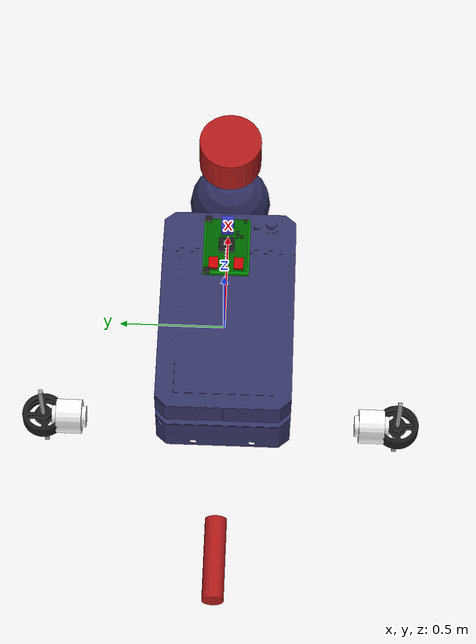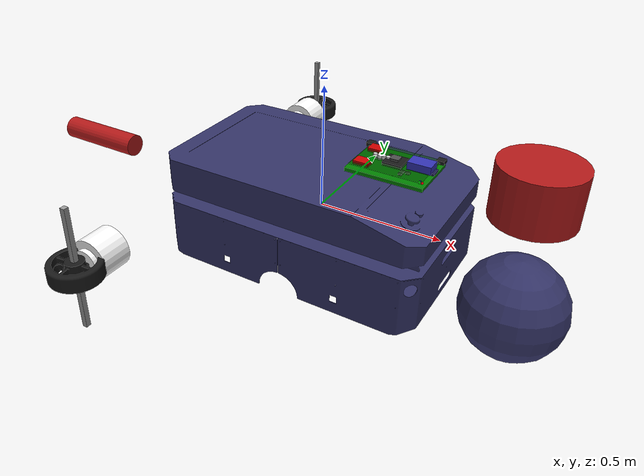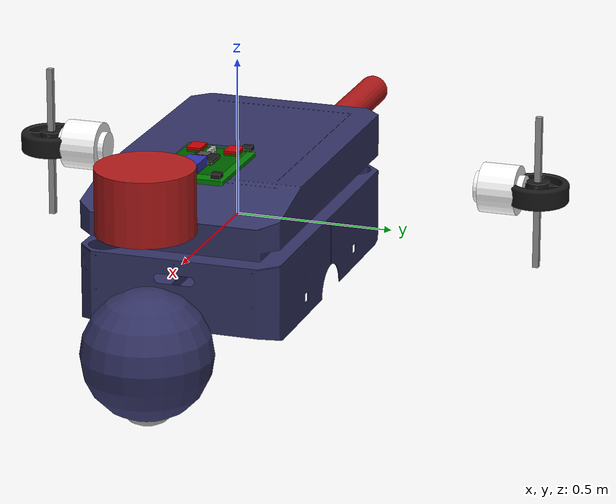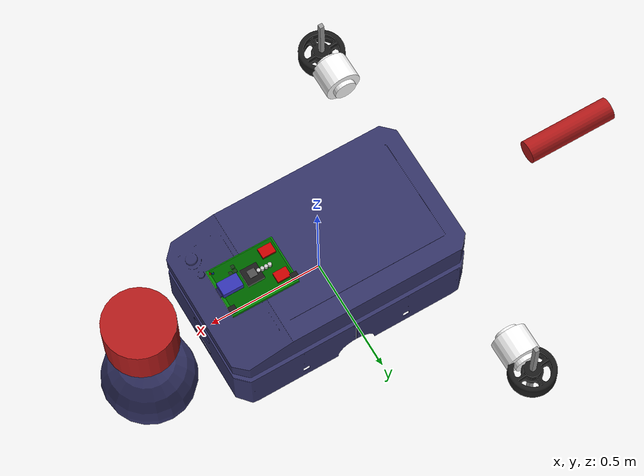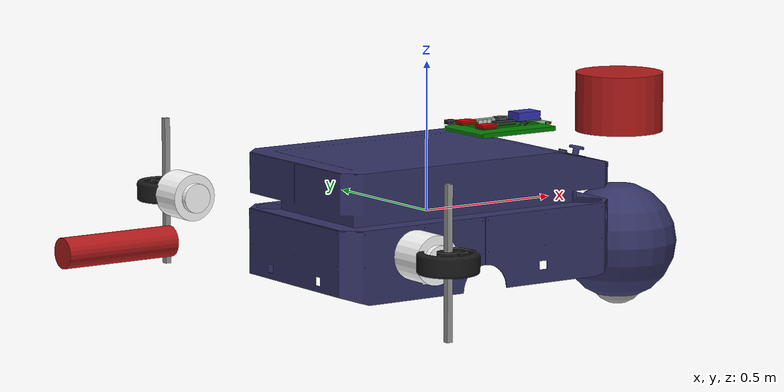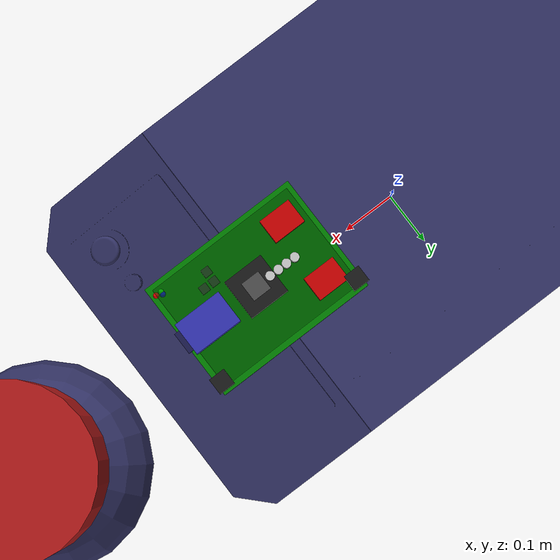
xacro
<?xml version="1.0" ?>

<robot name="robot" xmlns:xacro="http://www.ros.org/wiki/xacro">

    <xacro:include filename="$(find robot_description)/urdf/robot.gazebo" />

    <!-- Parameters -->
    <xacro:property name="chassis_mass" value="10" />
    <xacro:property name="pi" value="3.1415926535897931"/>

    <!-- Link - chassis -->
    <link name="link_chassis">
        <inertial>
            <mass value="${chassis_mass}" />
            <origin xyz="0 0 0.3" rpy="0 0 0" />
            <inertia ixx="1.5417" ixy="0" ixz="0" iyy="3.467" iyz="0" izz="4.742" />
        </inertial>

        <collision>
            <geometry>
                <mesh filename="package://robot_description/meshes/chassis.stl" />
            </geometry>
        </collision>

        <visual>
            <geometry>
                <mesh filename="package://robot_description/meshes/chassis.stl" />
            </geometry>
            <material name="DarkBlue">
                <color rgba="0.2 0.2 0.4 1" />
            </material>
        </visual>
    </link>

    <!-- Joint - caster wheel -->
    <joint name="joint_chassis_caster_wheel" type="fixed">
        <origin rpy="0 0 0" xyz="0.8 0 -0.15" />
        <child link="link_caster_wheel" />
        <parent link="link_chassis" />
        <joint_properties damping="1.0" friction="1.0" />
    </joint>
    <!-- Link - caster wheel -->
    <link name="link_caster_wheel">
        <inertial>
            <mass value="1" />
            <origin xyz="0 0 0" rpy="0 0 0" />
            <inertia ixx="0.002526666666667" ixy="0" ixz="0" iyy="0.002526666666667" iyz="0" izz="0.005"/>
        </inertial>

        <!-- Caster wheel support -->
        <collision>
            <origin rpy="0 0 0" xyz="0 0 -0.03" />
            <geometry>
                <sphere radius="0.2" />
            </geometry>
        </collision>
        <visual>
            <origin rpy="0 0 0" xyz="0 0 -0.03" />
            <geometry>
                <sphere radius="0.2" />
            </geometry>
            <material name="DarkBlue">
                <color rgba="0.2 0.2 0.4 1" />
            </material>
        </visual>

        <!-- Caster wheel -->
        <collision>
            <origin rpy="0 0 0" xyz="0 0 -0.15" />
            <geometry>
                <sphere radius="0.10" />
            </geometry>
        </collision>
        <visual>
            <origin rpy="0 0 0" xyz="0 0 -0.15" />
            <geometry>
                <sphere radius="0.10" />
            </geometry>
            <material name="Grey">
                <color rgba="0.6 0.6 0.6 1" />
            </material>
        </visual>
    </link>

    <!-- Joint - chassis / left wheel -->
    <joint name="joint_chassis_left_wheel" type="continuous">
        <origin rpy="0 0 0" xyz="-0.5 0.65 0" />
        <child link="link_left_wheel" />
        <parent link="link_chassis" />
        <axis rpy="0 0 0" xyz="0 1 0" />
        <limit effort="10000" velocity="1000" />
        <joint_properties damping="1.0" friction="1.0" />
    </joint>
    <!-- Link - left wheel -->
    <link name="link_left_wheel">
        <inertial>
            <mass value="1" />
            <origin xyz="0 0 0" rpy="0 0 0" />
            <inertia ixx="0.002526666666667" ixy="0" ixz="0" iyy="0.002526666666667" iyz="0" izz="0.005"/>
        </inertial>

        <!-- Tires -->
        <collision>
            <origin rpy="${pi/2} 0 0" xyz="0 0.18 0" />
            <geometry>
                <cylinder length="0.12" radius="0.4"/>
            </geometry>
        </collision>
        <visual>
            <origin rpy="${pi/2} 0 0" xyz="0 0.18 0" />
            <geometry>
                <mesh filename="package://robot_description/meshes/wheel.stl" />
            </geometry>
            <material name="Black">
                <color rgba="0.1 0.1 0.1 1" />
            </material>
        </visual>

        <!-- Primary Axle - Changed to White -->
        <collision>
            <origin rpy="${pi/2} 0 0" xyz="0 0.06 0" />
            <geometry>
                <cylinder length="0.12" radius="0.08"/>
            </geometry>
        </collision>
        <visual>
            <origin rpy="${pi/2} 0 0" xyz="0 0.06 0" />
            <geometry>
                <cylinder length="0.12" radius="0.08"/>
            </geometry>
            <material name="White">
                <color rgba="1.0 1.0 1.0 1" />
            </material>
        </visual>

        <!-- Added Secondary Axle to form X-shape -->
        <visual>
            <origin rpy="${pi/2} ${pi/2} 0" xyz="0 0.06 0" />
            <geometry>
                <cylinder length="0.16" radius="0.05"/>
            </geometry>
            <material name="White">
                <color rgba="1.0 1.0 1.0 1" />
            </material>
        </visual>

        <!-- Hubcap -->
        <visual>
            <origin rpy="${pi/2} 0 0" xyz="0 0.18 0" />
            <geometry>
                <box size="0.02 0.5 0.02" />
            </geometry>
            <material name="Grey">
                <color rgba="0.6 0.6 0.6 1" />
            </material>
        </visual>
    </link>

    <!-- Joint - chassis / right wheel -->
    <joint name="joint_chassis_right_wheel" type="continuous">
        <origin rpy="0 0 0" xyz="-0.5 -0.65 0" />
        <child link="link_right_wheel" />
        <parent link="link_chassis" />
        <axis rpy="0 0 0" xyz="0 1 0" />
        <limit effort="10000" velocity="1000" />
        <joint_properties damping="1.0" friction="1.0" />
    </joint>
    <!-- Link - right wheel -->
    <link name="link_right_wheel">
        <inertial>
            <mass value="1" />
            <origin xyz="0 0 0" rpy="0 0 0" />
            <inertia ixx="0.002526666666667" ixy="0" ixz="0" iyy="0.002526666666667" iyz="0" izz="0.005"/>
        </inertial>

        <!-- Tires -->
        <collision>
            <origin rpy="${pi/2} 0 0" xyz="0 -0.18 0" />
            <geometry>
                <cylinder length="0.12" radius="0.4"/>
            </geometry>
        </collision>
        <visual>
            <origin rpy="${pi/2} 0 0" xyz="0 -0.18 0" />
            <geometry>
                <mesh filename="package://robot_description/meshes/wheel.stl" />
            </geometry>
            <material name="Black">
                <color rgba="0.1 0.1 0.1 1" />
            </material>
        </visual>

        <!-- Primary Axle - Changed to White -->
        <collision>
            <origin rpy="${pi/2} 0 0" xyz="0 -0.06 0" />
            <geometry>
                <cylinder length="0.12" radius="0.08"/>
            </geometry>
        </collision>
        <visual>
            <origin rpy="${pi/2} 0 0" xyz="0 -0.06 0" />
            <geometry>
                <cylinder length="0.12" radius="0.08"/>
            </geometry>
            <material name="White">
                <color rgba="1.0 1.0 1.0 1" />
            </material>
        </visual>

        <!-- Added Secondary Axle to form X-shape -->
        <visual>
            <origin rpy="${pi/2} ${pi/2} 0" xyz="0 -0.06 0" />
            <geometry>
                <cylinder length="0.16" radius="0.05"/>
            </geometry>
            <material name="White">
                <color rgba="1.0 1.0 1.0 1" />
            </material>
        </visual>

        <!-- Hubcap -->
        <visual>
            <origin rpy="${pi/2} 0 0" xyz="0 -0.18 0" />
            <geometry>
                <box size="0.02 0.5 0.02" />
            </geometry>
            <material name="Grey">
                <color rgba="0.6 0.6 0.6 1" />
            </material>
        </visual>
    </link>

    <!-- Laser scan -->
    <joint name="joint_laser_scan_chassis" type="fixed">
        <origin rpy="0 0 0" xyz="0.8 0 0.3" />
        <child link="link_laser_scan" />
        <parent link="link_chassis" />
        <joint_properties damping="1.0" friction="1.0" />
    </joint>
    <link name="link_laser_scan">
        <inertial>
            <origin xyz="0 0 0" rpy="0 0 0" />
            <mass value="0.5" />
            <inertia ixx="0.000252666666667" ixy="0" ixz="0" iyy="0.000252666666667" iyz="0" izz="0.0005"/>
        </inertial>
        <visual>
            <origin xyz="0 0 0" rpy="0 0 0" />
            <geometry>
                <cylinder radius="0.15" length="0.20"/>
            </geometry>
            <material name="Red">
                <color rgba="0.7 0.1 0.1 1" />
            </material>
        </visual>
        <collision>
            <origin xyz="0 0 0" rpy="0 0 0"/>
            <geometry>
                <cylinder radius="0.15" length="0.20"/>
            </geometry>
        </collision>
    </link>

    <!-- Larger Realistic Electric Board with Components -->
    <joint name="joint_chassis_electric_board" type="fixed">
        <origin rpy="0 0 0" xyz="0.3 0 0.25" />
        <child link="link_electric_board" />
        <parent link="link_chassis" />
        <joint_properties damping="1.0" friction="1.0" />
    </joint>

    <!-- Main PCB Board - 50% larger -->
    <link name="link_electric_board">
        <inertial>
            <origin xyz="0 0 0" rpy="0 0 0" />
            <mass value="0.8" />
            <inertia ixx="0.0012" ixy="0" ixz="0" iyy="0.0012" iyz="0" izz="0.0023"/>
        </inertial>
        <visual>
            <origin xyz="0 0 0" rpy="0 0 0" />
            <geometry>
                <box size="0.3 0.22 0.015"/>
            </geometry>
            <material name="PCBGreen">
                <color rgba="0.0 0.5 0.0 1" />
            </material>
        </visual>
        <collision>
            <origin xyz="0 0 0" rpy="0 0 0"/>
            <geometry>
                <box size="0.3 0.22 0.015"/>
            </geometry>
        </collision>
    </link>

    <!-- Microcontroller - larger -->
    <joint name="joint_board_microcontroller" type="fixed">
        <origin rpy="0 0 0" xyz="0 0 0.015" />
        <child link="link_microcontroller" />
        <parent link="link_electric_board" />
    </joint>
    <link name="link_microcontroller">
        <inertial>
            <origin xyz="0 0 0" rpy="0 0 0" />
            <mass value="0.1" />
            <inertia ixx="0.00004" ixy="0" ixz="0" iyy="0.00004" iyz="0" izz="0.00004"/>
        </inertial>
        <visual>
            <origin xyz="0 0 0.007" rpy="0 0 0" />
            <geometry>
                <box size="0.075 0.075 0.014"/>
            </geometry>
            <material name="Black">
                <color rgba="0.1 0.1 0.1 1" />
            </material>
        </visual>
    </link>

    <!-- Battery - larger -->
    <joint name="joint_board_battery" type="fixed">
        <origin rpy="0 0 0" xyz="0.1 0 0.02" />
        <child link="link_battery" />
        <parent link="link_electric_board" />
    </joint>
    <link name="link_battery">
        <inertial>
            <origin xyz="0 0 0" rpy="0 0 0" />
            <mass value="0.3" />
            <inertia ixx="0.0002" ixy="0" ixz="0" iyy="0.0002" iyz="0" izz="0.0002"/>
        </inertial>
        <visual>
            <origin xyz="0 0 0.015" rpy="0 0 0" />
            <geometry>
                <box size="0.09 0.06 0.03"/>
            </geometry>
            <material name="Battery">
                <color rgba="0.2 0.2 0.7 1" />
            </material>
        </visual>
    </link>

    <!-- Motor Driver - larger -->
    <joint name="joint_board_motor_driver" type="fixed">
        <origin rpy="0 0 0" xyz="-0.1 0.06 0.015" />
        <child link="link_motor_driver" />
        <parent link="link_electric_board" />
    </joint>
    <link name="link_motor_driver">
        <inertial>
            <origin xyz="0 0 0" rpy="0 0 0" />
            <mass value="0.08" />
            <inertia ixx="0.00002" ixy="0" ixz="0" iyy="0.00002" iyz="0" izz="0.00002"/>
        </inertial>
        <visual>
            <origin xyz="0 0 0.007" rpy="0 0 0" />
            <geometry>
                <box size="0.06 0.045 0.014"/>
            </geometry>
            <material name="Red">
                <color rgba="0.8 0.0 0.0 1" />
            </material>
        </visual>
    </link>

    <!-- Second Motor Driver -->
    <joint name="joint_board_motor_driver2" type="fixed">
        <origin rpy="0 0 0" xyz="-0.1 -0.06 0.015" />
        <child link="link_motor_driver2" />
        <parent link="link_electric_board" />
    </joint>
    <link name="link_motor_driver2">
        <inertial>
            <origin xyz="0 0 0" rpy="0 0 0" />
            <mass value="0.08" />
            <inertia ixx="0.00002" ixy="0" ixz="0" iyy="0.00002" iyz="0" izz="0.00002"/>
        </inertial>
        <visual>
            <origin xyz="0 0 0.007" rpy="0 0 0" />
            <geometry>
                <box size="0.06 0.045 0.014"/>
            </geometry>
            <material name="Red">
                <color rgba="0.8 0.0 0.0 1" />
            </material>
        </visual>
    </link>

    <!-- Capacitors (4) - larger -->
    <joint name="joint_board_capacitor1" type="fixed">
        <origin rpy="0 0 0" xyz="-0.08 0 0.015" />
        <child link="link_capacitor1" />
        <parent link="link_electric_board" />
    </joint>
    <link name="link_capacitor1">
        <visual>
            <origin xyz="0 0 0.01" rpy="0 0 0" />
            <geometry>
                <cylinder radius="0.008" length="0.02"/>
            </geometry>
            <material name="Silver">
                <color rgba="0.8 0.8 0.8 1" />
            </material>
        </visual>
    </link>

    <joint name="joint_board_capacitor2" type="fixed">
        <origin rpy="0 0 0" xyz="-0.063 0 0.015" />
        <child link="link_capacitor2" />
        <parent link="link_electric_board" />
    </joint>
    <link name="link_capacitor2">
        <visual>
            <origin xyz="0 0 0.01" rpy="0 0 0" />
            <geometry>
                <cylinder radius="0.008" length="0.02"/>
            </geometry>
            <material name="Silver">
                <color rgba="0.8 0.8 0.8 1" />
            </material>
        </visual>
    </link>

    <!-- Added 2 more capacitors for realism -->
    <joint name="joint_board_capacitor3" type="fixed">
        <origin rpy="0 0 0" xyz="-0.046 0 0.015" />
        <child link="link_capacitor3" />
        <parent link="link_electric_board" />
    </joint>
    <link name="link_capacitor3">
        <visual>
            <origin xyz="0 0 0.01" rpy="0 0 0" />
            <geometry>
                <cylinder radius="0.008" length="0.02"/>
            </geometry>
            <material name="Silver">
                <color rgba="0.8 0.8 0.8 1" />
            </material>
        </visual>
    </link>

    <joint name="joint_board_capacitor4" type="fixed">
        <origin rpy="0 0 0" xyz="-0.029 0 0.015" />
        <child link="link_capacitor4" />
        <parent link="link_electric_board" />
    </joint>
    <link name="link_capacitor4">
        <visual>
            <origin xyz="0 0 0.01" rpy="0 0 0" />
            <geometry>
                <cylinder radius="0.008" length="0.02"/>
            </geometry>
            <material name="Silver">
                <color rgba="0.8 0.8 0.8 1" />
            </material>
        </visual>
    </link>

    <!-- LEDs - larger -->
    <joint name="joint_board_led1" type="fixed">
        <origin rpy="0 0 0" xyz="0.13 -0.09 0.015" />
        <child link="link_led1" />
        <parent link="link_electric_board" />
    </joint>
    <link name="link_led1">
        <visual>
            <origin xyz="0 0 0.002" rpy="0 0 0" />
            <geometry>
                <sphere radius="0.005"/>
            </geometry>
            <material name="GreenLED">
                <color rgba="0.0 1.0 0.0 1" />
            </material>
        </visual>
    </link>

    <joint name="joint_board_led2" type="fixed">
        <origin rpy="0 0 0" xyz="0.14 -0.09 0.015" />
        <child link="link_led2" />
        <parent link="link_electric_board" />
    </joint>
    <link name="link_led2">
        <visual>
            <origin xyz="0 0 0.002" rpy="0 0 0" />
            <geometry>
                <sphere radius="0.005"/>
            </geometry>
            <material name="RedLED">
                <color rgba="1.0 0.0 0.0 1" />
            </material>
        </visual>
    </link>

    <!-- Added more LEDs -->
    <joint name="joint_board_led3" type="fixed">
        <origin rpy="0 0 0" xyz="0.13 -0.085 0.015" />
        <child link="link_led3" />
        <parent link="link_electric_board" />
    </joint>
    <link name="link_led3">
        <visual>
            <origin xyz="0 0 0.002" rpy="0 0 0" />
            <geometry>
                <sphere radius="0.005"/>
            </geometry>
            <material name="BlueLED">
                <color rgba="0.0 0.0 1.0 1" />
            </material>
        </visual>
    </link>

    <!-- Heat sink - larger -->
    <joint name="joint_microcontroller_heat_sink" type="fixed">
        <origin rpy="0 0 0" xyz="0 0 0.014" />
        <child link="link_heat_sink" />
        <parent link="link_microcontroller" />
    </joint>
    <link name="link_heat_sink">
        <visual>
            <origin xyz="0 0 0.005" rpy="0 0 0" />
            <geometry>
                <box size="0.03 0.03 0.01"/>
            </geometry>
            <material name="DarkGrey">
                <color rgba="0.3 0.3 0.3 1" />
            </material>
        </visual>
    </link>

    <!-- Added heat sink fins for realism -->
    <joint name="joint_heat_sink_fins" type="fixed">
        <origin rpy="0 0 0" xyz="0 0 0.005" />
        <child link="link_heat_sink_fins" />
        <parent link="link_heat_sink" />
    </joint>
    <link name="link_heat_sink_fins">
        <visual>
            <origin xyz="0 0 0.005" rpy="0 0 0" />
            <geometry>
                <box size="0.035 0.035 0.001"/>
            </geometry>
            <material name="DarkGrey">
                <color rgba="0.3 0.3 0.3 1" />
            </material>
        </visual>
    </link>

    <!-- Connectors - larger -->
    <joint name="joint_board_connector1" type="fixed">
        <origin rpy="0 0 0" xyz="0.14 0.09 0.015" />
        <child link="link_connector1" />
        <parent link="link_electric_board" />
    </joint>
    <link name="link_connector1">
        <visual>
            <origin xyz="0 0 0.007" rpy="0 0 0" />
            <geometry>
                <box size="0.03 0.03 0.014"/>
            </geometry>
            <material name="Black">
                <color rgba="0.1 0.1 0.1 1" />
            </material>
        </visual>
    </link>

    <joint name="joint_board_connector2" type="fixed">
        <origin rpy="0 0 0" xyz="-0.14 0.09 0.015" />
        <child link="link_connector2" />
        <parent link="link_electric_board" />
    </joint>
    <link name="link_connector2">
        <visual>
            <origin xyz="0 0 0.007" rpy="0 0 0" />
            <geometry>
                <box size="0.03 0.03 0.014"/>
            </geometry>
            <material name="Black">
                <color rgba="0.1 0.1 0.1 1" />
            </material>
        </visual>
    </link>

    <!-- Small ICs (3) -->
    <joint name="joint_board_ic1" type="fixed">
        <origin rpy="0 0 0" xyz="0.05 -0.05 0.015" />
        <child link="link_ic1" />
        <parent link="link_electric_board" />
    </joint>
    <link name="link_ic1">
        <visual>
            <origin xyz="0 0 0.003" rpy="0 0 0" />
            <geometry>
                <box size="0.015 0.015 0.006"/>
            </geometry>
            <material name="DarkGrey">
                <color rgba="0.2 0.2 0.2 1" />
            </material>
        </visual>
    </link>

    <joint name="joint_board_ic2" type="fixed">
        <origin rpy="0 0 0" xyz="0.07 -0.05 0.015" />
        <child link="link_ic2" />
        <parent link="link_electric_board" />
    </joint>
    <link name="link_ic2">
        <visual>
            <origin xyz="0 0 0.003" rpy="0 0 0" />
            <geometry>
                <box size="0.015 0.015 0.006"/>
            </geometry>
            <material name="DarkGrey">
                <color rgba="0.2 0.2 0.2 1" />
            </material>
        </visual>
    </link>

    <joint name="joint_board_ic3" type="fixed">
        <origin rpy="0 0 0" xyz="0.05 -0.07 0.015" />
        <child link="link_ic3" />
        <parent link="link_electric_board" />
    </joint>
    <link name="link_ic3">
        <visual>
            <origin xyz="0 0 0.003" rpy="0 0 0" />
            <geometry>
                <box size="0.015 0.015 0.006"/>
            </geometry>
            <material name="DarkGrey">
                <color rgba="0.2 0.2 0.2 1" />
            </material>
        </visual>
    </link>

    <!-- Add a small display screen -->
    <joint name="joint_board_display" type="fixed">
        <origin rpy="0 0 0" xyz="0.13 0 0.015" />
        <child link="link_display" />
        <parent link="link_electric_board" />
    </joint>
    <link name="link_display">
        <visual>
            <origin xyz="0 0 0.005" rpy="0 0 0" />
            <geometry>
                <box size="0.05 0.04 0.01"/>
            </geometry>
            <material name="LCD">
                <color rgba="0.1 0.1 0.3 1" />
            </material>
        </visual>
    </link>

    <!-- Add wiring harness between components -->
    <joint name="joint_board_wiring" type="fixed">
        <origin rpy="0 0 0" xyz="0 0 0.02" />
        <child link="link_wiring" />
        <parent link="link_electric_board" />
    </joint>
    <link name="link_wiring">
        <visual>
            <origin xyz="0 0 0.001" rpy="0 0 0" />
            <geometry>
                <box size="0.28 0.2 0.002"/>
            </geometry>
            <material name="WiringColor">
                <color rgba="0.0 0.3 0.0 0.5" />
            </material>
        </visual>
    </link>
    <!-- Robot tail -->
<joint name="joint_tail" type="continuous">
    <origin rpy="0 0 0" xyz="-1 0 0" />
    <child link="link_tail" />
    <axis rpy="0 0 0" xyz="0 1 0" />
    <parent link="link_chassis" />
    <joint_properties damping="1.0" friction="1.0" />
</joint>
<link name="link_tail">
    <inertial>
        <origin xyz="0 0 0" rpy="0 0 0" />
        <mass value="0.5" />
        <inertia ixx="0.000252666666667" ixy="0" ixz="0" iyy="0.000252666666667" iyz="0" izz="0.0005"/>
    </inertial>
    <visual>
        <origin xyz="-0.2 0 0" rpy="0 ${pi/2} 0" />
        <geometry>
            <cylinder radius="0.05" length="0.40"/>
        </geometry>
        <material name="Red">
            <color rgba="0.7 0.1 0.1 1" />
        </material>
    </visual>
    <collision>
        <origin xyz="-0.2 0 0" rpy="0 ${pi/2} 0"/>
        <geometry>
            <cylinder radius="0.05" length="0.40"/>
        </geometry>
    </collision>
</link>
<transmission name="tran_tail">
    <type>transmission_interface/SimpleTransmission</type>
    <joint name="joint_tail">
        <hardwareInterface>hardware_interface/EffortJointInterface</hardwareInterface>
    </joint>
    <actuator name="motor_joint_tail">
        <hardwareInterface>hardware_interface/EffortJointInterface</hardwareInterface>
        <mechanicalReduction>1</mechanicalReduction>
    </actuator>
</transmission>
</robot>
